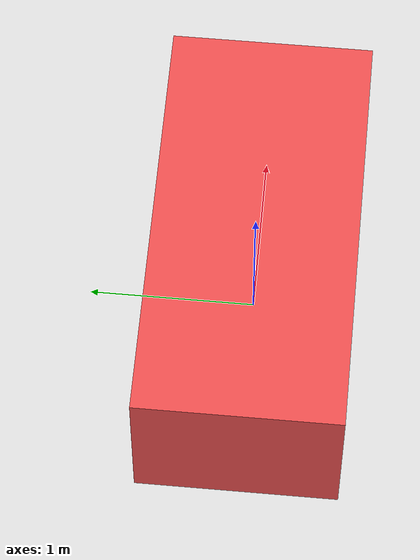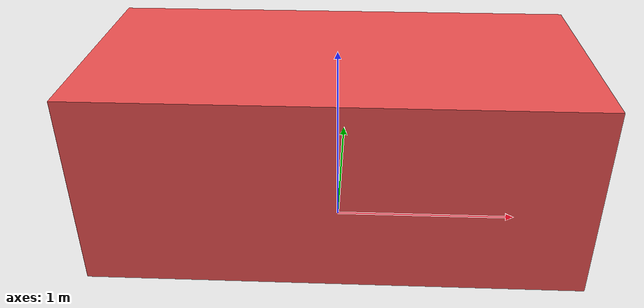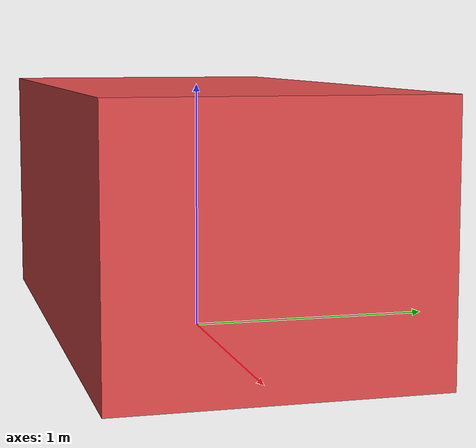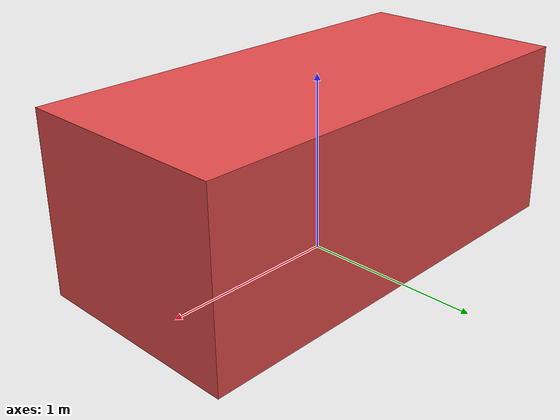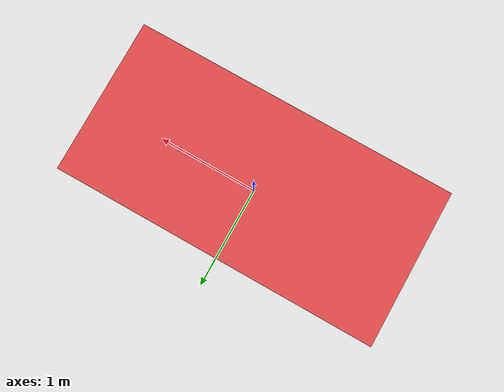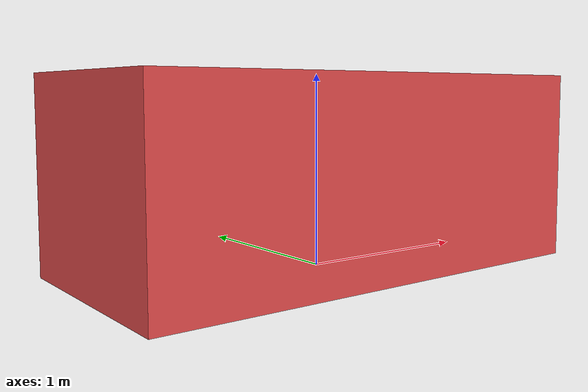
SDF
<?xml version="1.0"?>
<sdf version="1.7">
  <model name="moving_obstacle">
    <static>0</static>
    <link name="link">
      <inertial>
        <mass>10</mass>
        <inertia>
          <ixx>0.5</ixx>
          <ixy>0</ixy>
          <ixz>0</ixz>
          <iyy>0.5</iyy>
          <iyz>0</iyz>
          <izz>0.5</izz>
        </inertia>
        <pose>0 0 0 0 -0 0</pose>
      </inertial>
      <collision name="collision">
        <geometry>
          <box>
            <size>2.5 1.2 1.0</size>
          </box>
        </geometry>
        <surface>
          <friction>
            <ode>
              <mu>0.5</mu>
              <mu2>0.5</mu2>
            </ode>
          </friction>
          <bounce>
            <restitution_coefficient>0</restitution_coefficient>
          </bounce>
          <contact>
            <ode/>
          </contact>
        </surface>
        <max_contacts>10</max_contacts>
      </collision>
      <visual name="visual">
        <geometry>
          <box>
            <size>2.5 1.2 1.0</size>
          </box>
        </geometry>
        <material>
          <ambient>0.8 0.2 0.2 1</ambient>
          <diffuse>0.9 0.3 0.3 1</diffuse>
          <specular>0.1 0.1 0.1 1</specular>
        </material>
      </visual>
      <pose>0 0 0.5 0 -0 0</pose>
    </link>
  </model>
</sdf>
